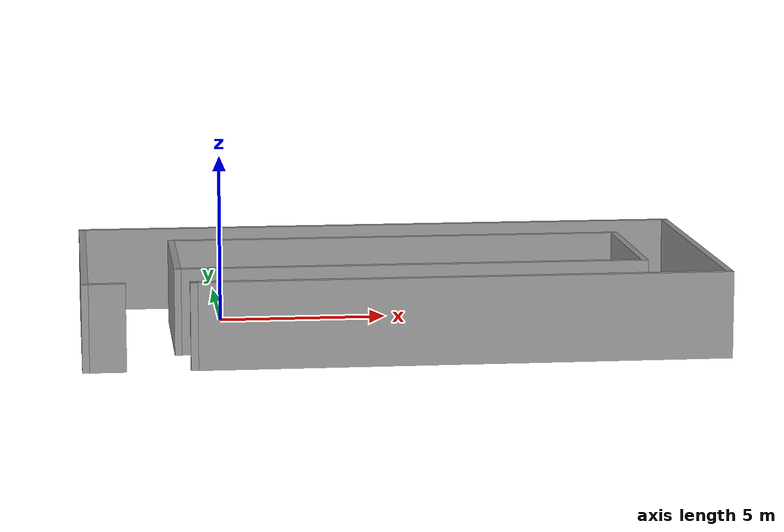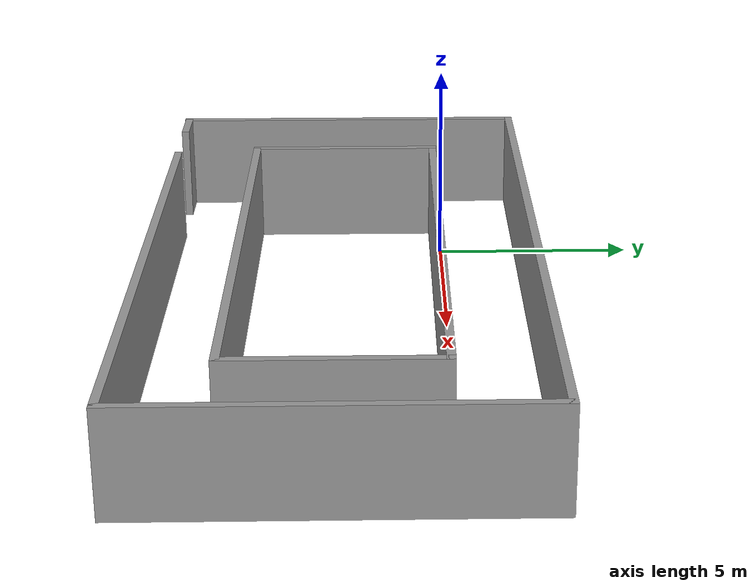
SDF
<sdf version='1.4'>
  <model name='SimpleLoopClosure'>
    <link name='Wall_0'>
      <collision name='Wall_0_Collision'>
        <geometry>
          <box>
            <size>9.376550 0.200000 2.500000</size>
          </box>
        </geometry>
        <pose>0.000000 0.000000 1.250000 0.000000 0.000000 0.000000</pose>
      </collision>
      <visual name='Wall_0_Visual'>
        <pose>0.000000 0.000000 1.250000 0.000000 0.000000 0.000000</pose>
        <geometry>
          <box>
            <size>9.376550 0.200000 2.500000</size>
          </box>
        </geometry>
        <material>
          <script>
            <uri>file://media/materials/scripts/gazebo.material</uri>
            <name>Gazebo/Grey</name>
          </script>
        </material>
      </visual>
      <velocity_decay>
        <linear>0.000000</linear>
        <angular>0.000000</angular>
      </velocity_decay>
      <pose>-4.130000 -2.529360 0.000000 0.000000 0.000000 -1.570800</pose>
    </link>
    <link name='Wall_11'>
      <collision name='Wall_11_Collision'>
        <geometry>
          <box>
            <size>13.685100 0.200000 2.500000</size>
          </box>
        </geometry>
        <pose>0.000000 0.000000 1.250000 0.000000 0.000000 0.000000</pose>
      </collision>
      <visual name='Wall_11_Visual'>
        <pose>0.000000 0.000000 1.250000 0.000000 0.000000 0.000000</pose>
        <geometry>
          <box>
            <size>13.685100 0.200000 2.500000</size>
          </box>
        </geometry>
        <material>
          <script>
            <uri>file://media/materials/scripts/gazebo.material</uri>
            <name>Gazebo/Grey</name>
          </script>
        </material>
      </visual>
      <velocity_decay>
        <linear>0.000000</linear>
        <angular>0.000000</angular>
      </velocity_decay>
      <pose>5.307810 -0.185623 0.000000 0.000000 0.000000 0.000000</pose>
    </link>
    <link name='Wall_12'>
      <collision name='Wall_12_Collision'>
        <geometry>
          <box>
            <size>4.988040 0.200000 2.500000</size>
          </box>
        </geometry>
        <pose>0.000000 0.000000 1.250000 0.000000 0.000000 0.000000</pose>
      </collision>
      <visual name='Wall_12_Visual'>
        <pose>0.000000 0.000000 1.250000 0.000000 0.000000 0.000000</pose>
        <geometry>
          <box>
            <size>4.988040 0.200000 2.500000</size>
          </box>
        </geometry>
        <material>
          <script>
            <uri>file://media/materials/scripts/gazebo.material</uri>
            <name>Gazebo/Grey</name>
          </script>
        </material>
      </visual>
      <velocity_decay>
        <linear>0.000000</linear>
        <angular>0.000000</angular>
      </velocity_decay>
      <pose>12.050400 -2.579640 0.000000 0.000000 0.000000 -1.570800</pose>
    </link>
    <link name='Wall_13'>
      <collision name='Wall_13_Collision'>
        <geometry>
          <box>
            <size>13.662000 0.200000 2.500000</size>
          </box>
        </geometry>
        <pose>0.000000 0.000000 1.250000 0.000000 0.000000 0.000000</pose>
      </collision>
      <visual name='Wall_13_Visual'>
        <pose>0.000000 0.000000 1.250000 0.000000 0.000000 0.000000</pose>
        <geometry>
          <box>
            <size>13.662000 0.200000 2.500000</size>
          </box>
        </geometry>
        <material>
          <script>
            <uri>file://media/materials/scripts/gazebo.material</uri>
            <name>Gazebo/Grey</name>
          </script>
        </material>
      </visual>
      <velocity_decay>
        <linear>0.000000</linear>
        <angular>0.000000</angular>
      </velocity_decay>
      <pose>5.319380 -4.973660 0.000000 0.000000 0.000000 3.141590</pose>
    </link>
    <link name='Wall_18'>
      <collision name='Wall_18_Collision'>
        <geometry>
          <box>
            <size>18.403800 0.200000 2.500000</size>
          </box>
        </geometry>
        <pose>0.000000 0.000000 1.250000 0.000000 0.000000 0.000000</pose>
      </collision>
      <visual name='Wall_18_Visual'>
        <pose>0.000000 0.000000 1.250000 0.000000 0.000000 0.000000</pose>
        <geometry>
          <box>
            <size>18.403800 0.200000 2.500000</size>
          </box>
        </geometry>
        <material>
          <script>
            <uri>file://media/materials/scripts/gazebo.material</uri>
            <name>Gazebo/Grey</name>
          </script>
        </material>
      </visual>
      <velocity_decay>
        <linear>0.000000</linear>
        <angular>0.000000</angular>
      </velocity_decay>
      <pose>4.983980 2.081180 0.000000 0.000000 0.000000 0.000000</pose>
    </link>
    <link name='Wall_19'>
      <collision name='Wall_19_Collision'>
        <geometry>
          <box>
            <size>9.382850 0.200000 2.500000</size>
          </box>
        </geometry>
        <pose>0.000000 0.000000 1.250000 0.000000 0.000000 0.000000</pose>
      </collision>
      <visual name='Wall_19_Visual'>
        <pose>0.000000 0.000000 1.250000 0.000000 0.000000 0.000000</pose>
        <geometry>
          <box>
            <size>9.382850 0.200000 2.500000</size>
          </box>
        </geometry>
        <material>
          <script>
            <uri>file://media/materials/scripts/gazebo.material</uri>
            <name>Gazebo/Grey</name>
          </script>
        </material>
      </visual>
      <velocity_decay>
        <linear>0.000000</linear>
        <angular>0.000000</angular>
      </velocity_decay>
      <pose>14.085900 -2.510250 0.000000 0.000000 0.000000 -1.570800</pose>
    </link>
    <link name='Wall_20'>
      <collision name='Wall_20_Collision'>
        <geometry>
          <box>
            <size>15.396800 0.200000 2.500000</size>
          </box>
        </geometry>
        <pose>0.000000 0.000000 1.250000 0.000000 0.000000 0.000000</pose>
      </collision>
      <visual name='Wall_20_Visual'>
        <pose>0.000000 0.000000 1.250000 0.000000 0.000000 0.000000</pose>
        <geometry>
          <box>
            <size>15.396800 0.200000 2.500000</size>
          </box>
        </geometry>
        <material>
          <script>
            <uri>file://media/materials/scripts/gazebo.material</uri>
            <name>Gazebo/Grey</name>
          </script>
        </material>
      </visual>
      <velocity_decay>
        <linear>0.000000</linear>
        <angular>0.000000</angular>
      </velocity_decay>
      <pose>6.487470 -7.101680 0.000000 0.000000 0.000000 3.141590</pose>
    </link>
    <link name='Wall_21'>
      <collision name='Wall_21_Collision'>
        <geometry>
          <box>
            <size>0.210000 0.200000 2.500000</size>
          </box>
        </geometry>
        <pose>0.000000 0.000000 1.250000 0.000000 0.000000 0.000000</pose>
      </collision>
      <visual name='Wall_21_Visual'>
        <pose>0.000000 0.000000 1.250000 0.000000 0.000000 0.000000</pose>
        <geometry>
          <box>
            <size>0.210000 0.200000 2.500000</size>
          </box>
        </geometry>
        <material>
          <script>
            <uri>file://media/materials/scripts/gazebo.material</uri>
            <name>Gazebo/Grey</name>
          </script>
        </material>
      </visual>
      <velocity_decay>
        <linear>0.000000</linear>
        <angular>0.000000</angular>
      </velocity_decay>
      <pose>-1.105930 -7.101680 0.000000 0.000000 0.000000 0.000000</pose>
    </link>
    <link name='Wall_29'>
      <collision name='Wall_29_Collision'>
        <geometry>
          <box>
            <size>1.194880 0.200000 2.500000</size>
          </box>
        </geometry>
        <pose>0.000000 0.000000 1.250000 0.000000 0.000000 0.000000</pose>
      </collision>
      <visual name='Wall_29_Visual'>
        <pose>0.000000 0.000000 1.250000 0.000000 0.000000 0.000000</pose>
        <geometry>
          <box>
            <size>1.194880 0.200000 2.500000</size>
          </box>
        </geometry>
        <material>
          <script>
            <uri>file://media/materials/scripts/gazebo.material</uri>
            <name>Gazebo/Grey</name>
          </script>
        </material>
      </visual>
      <velocity_decay>
        <linear>0.000000</linear>
        <angular>0.000000</angular>
      </velocity_decay>
      <pose>-3.597610 -7.101680 0.000000 0.000000 0.000000 0.000000</pose>
    </link>
    <link name='Wall_31'>
      <collision name='Wall_31_Collision'>
        <geometry>
          <box>
            <size>4.988040 0.200000 2.500000</size>
          </box>
        </geometry>
        <pose>0.000000 0.000000 1.250000 0.000000 0.000000 0.000000</pose>
      </collision>
      <visual name='Wall_31_Visual'>
        <pose>0.000000 0.000000 1.250000 0.000000 0.000000 0.000000</pose>
        <geometry>
          <box>
            <size>4.988040 0.200000 2.500000</size>
          </box>
        </geometry>
        <material>
          <script>
            <uri>file://media/materials/scripts/gazebo.material</uri>
            <name>Gazebo/Grey</name>
          </script>
        </material>
      </visual>
      <velocity_decay>
        <linear>0.000000</linear>
        <angular>0.000000</angular>
      </velocity_decay>
      <pose>-1.481020 -2.579640 0.000000 0.000000 0.000000 -1.570800</pose>
    </link>
    <static>1</static>
  </model>
</sdf>
